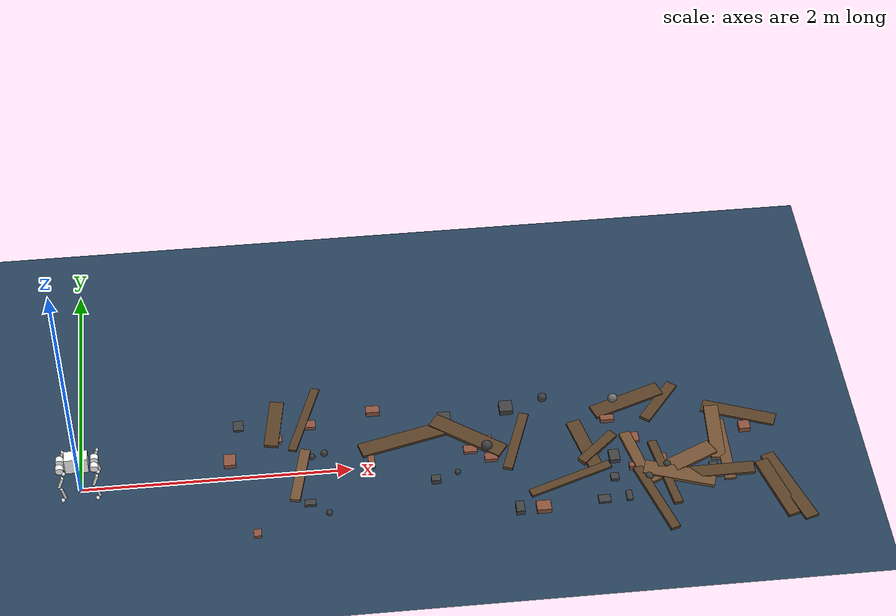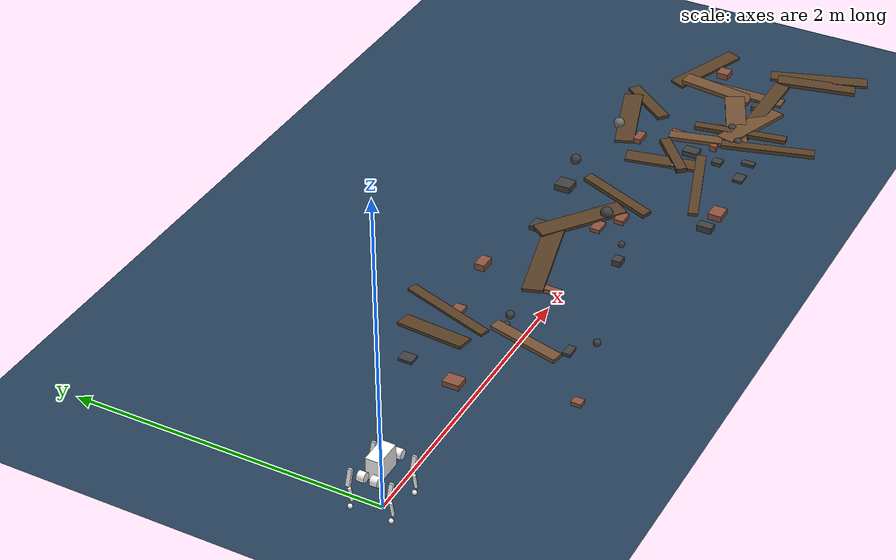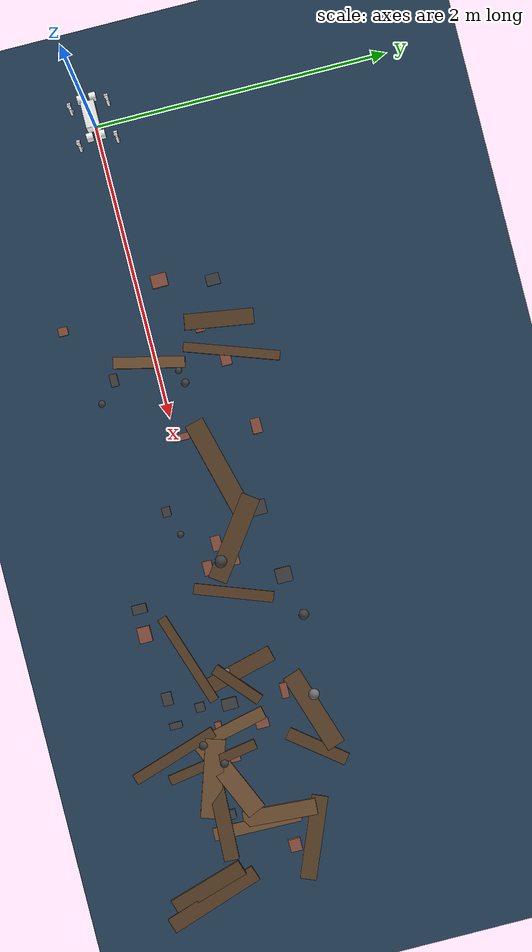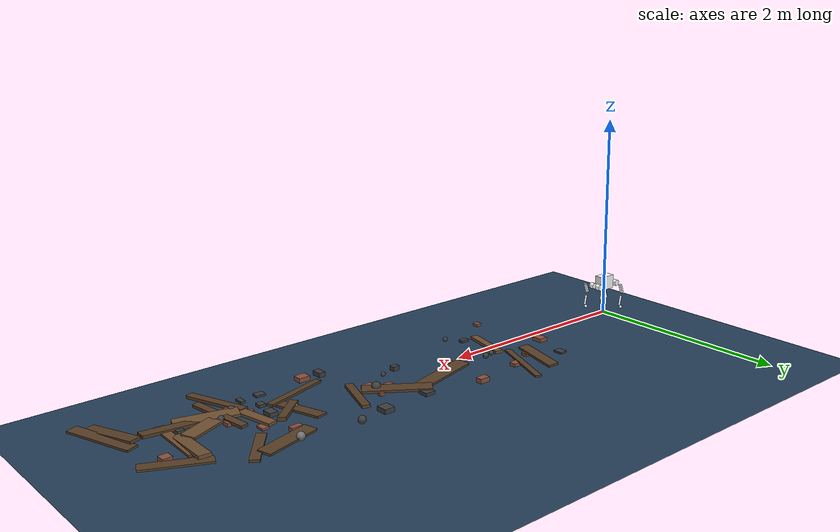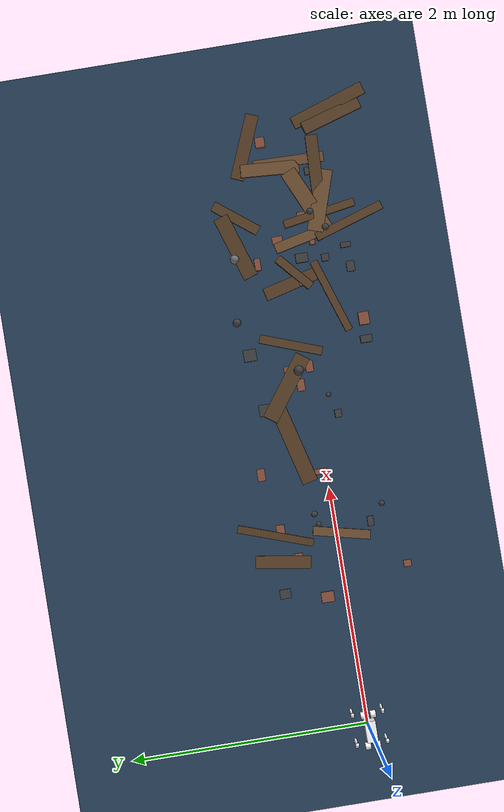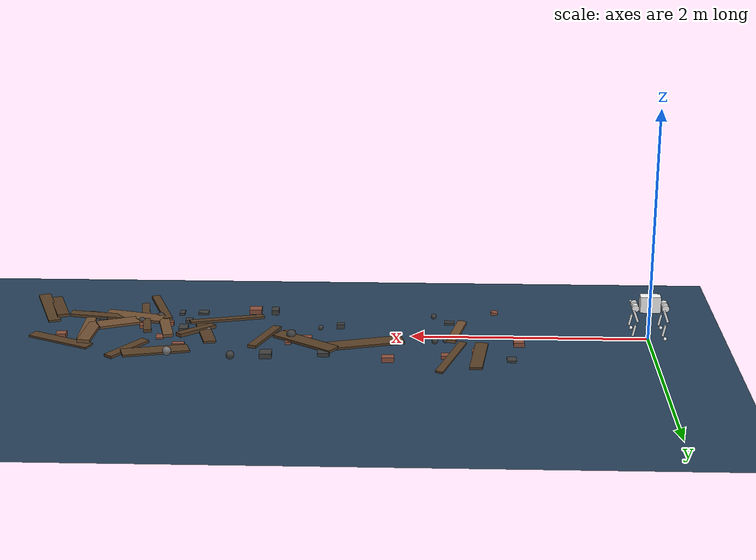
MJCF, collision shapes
<mujoco model="htdw_4438 scene debris planks">
  <include file="htdw_4438.xml"/>

  <statistic center="0 0 0.1" extent="0.8"/>

  <visual>
    <headlight diffuse="0.6 0.6 0.6" ambient="0.3 0.3 0.3" specular="0 0 0"/>
    <rgba haze="0.15 0.25 0.35 1"/>
  </visual>

  <asset>
    <texture type="skybox" builtin="gradient" rgb1="0.3 0.5 0.7" rgb2="0 0 0" width="512" height="3072"/>
    <texture type="2d" name="groundplane" builtin="checker" mark="edge" rgb1="0.2 0.3 0.4" rgb2="0.1 0.2 0.3"
      markrgb="0.8 0.8 0.8" width="300" height="300"/>
    <material name="groundplane" texture="groundplane" texuniform="true" texrepeat="5 5" reflectance="0.2"/>

    <material name="debris_stone" rgba="0.45 0.45 0.45 1" reflectance="0.05"/>
    <material name="debris_stone2" rgba="0.25 0.25 0.25 1" reflectance="0.05"/>
    <material name="debris_brick" rgba="0.55 0.32 0.24 1" reflectance="0.05"/>
    <material name="debris_wood" rgba="0.45 0.32 0.20 1" reflectance="0.05"/>
    <material name="debris_wood2" rgba="0.35 0.25 0.15 1" reflectance="0.05"/>
  </asset>

  <worldbody>
    <light pos="0 0 1.5" dir="0 0 -1" directional="true"/>
    <geom name="floor" size="0 0 0.05" type="plane" material="groundplane"/>

    <!-- Thin planks (slightly tilted) + scattered small bricks/rocks. -->
    <geom pos="3.747 0.037 0.027" euler="0.039 -0.014 4.961" type="box" size="0.239 0.053 0.009" material="debris_wood2"/>
    <geom pos="2.888 0.217 0.029" euler="-0.009 0.016 5.656" type="box" size="0.302 0.065 0.011" material="debris_wood2"/>
    <geom pos="4.776 -0.106 0.026" euler="-0.018 -0.046 1.548" type="box" size="0.298 0.042 0.008" material="debris_wood"/>
    <geom pos="4.424 -0.205 0.029" euler="-0.028 -0.036 0.423" type="box" size="0.290 0.067 0.011" material="debris_wood"/>
    <geom pos="1.675 0.509 0.026" euler="-0.036 -0.047 1.235" type="box" size="0.324 0.032 0.008" material="debris_wood2"/>
    <geom pos="1.447 0.481 0.028" euler="-0.055 0.057 4.565" type="box" size="0.233 0.053 0.010" material="debris_wood2"/>
    <geom pos="4.624 -0.315 0.030" euler="0.033 -0.054 3.108" type="box" size="0.336 0.051 0.012" material="debris_wood2"/>
    <geom pos="5.099 -0.523 0.031" euler="0.052 0.028 5.016" type="box" size="0.264 0.052 0.013" material="debris_wood2"/>
    <geom pos="2.395 0.230 0.028" euler="-0.051 -0.007 3.396" type="box" size="0.332 0.066 0.010" material="debris_wood2"/>
    <geom pos="4.735 0.060 0.032" euler="0.052 -0.008 4.656" type="box" size="0.248 0.054 0.014" material="debris_wood"/>
    <geom pos="1.613 -0.043 0.031" euler="0.017 -0.028 1.343" type="box" size="0.241 0.038 0.013" material="debris_wood"/>
    <geom pos="3.239 0.124 0.031" euler="0.041 -0.013 1.222" type="box" size="0.268 0.036 0.013" material="debris_wood2"/>
    <geom pos="4.951 0.240 0.026" euler="0.005 -0.037 2.749" type="box" size="0.280 0.055 0.008" material="debris_wood2"/>
    <geom pos="4.367 0.411 0.029" euler="-0.015 0.016 0.905" type="box" size="0.216 0.042 0.011" material="debris_wood2"/>
    <geom pos="4.298 -0.290 0.031" euler="-0.019 0.041 1.729" type="box" size="0.310 0.033 0.013" material="debris_wood2"/>
    <geom pos="5.187 -0.509 0.027" euler="-0.007 0.020 1.893" type="box" size="0.331 0.053 0.009" material="debris_wood2"/>
    <geom pos="4.405 -0.316 0.030" euler="-0.048 0.043 5.971" type="box" size="0.266 0.067 0.012" material="debris_wood"/>
    <geom pos="3.836 -0.004 0.033" euler="0.050 0.018 3.866" type="box" size="0.183 0.036 0.015" material="debris_wood2"/>
    <geom pos="4.194 -0.527 0.031" euler="0.018 0.025 5.022" type="box" size="0.307 0.036 0.013" material="debris_wood2"/>
    <geom pos="4.108 -0.103 0.031" euler="-0.018 0.016 4.932" type="box" size="0.229 0.043 0.013" material="debris_wood"/>
    <geom pos="4.127 0.448 0.027" euler="-0.036 -0.051 3.456" type="box" size="0.281 0.064 0.009" material="debris_wood2"/>
    <geom pos="3.594 -0.280 0.028" euler="0.035 -0.021 3.466" type="box" size="0.326 0.032 0.010" material="debris_wood2"/>

    <geom pos="4.004 -0.469 0.010" type="box" size="0.022 0.043 0.010" material="debris_stone2"/>
    <geom pos="3.363 -0.520 0.021" type="box" size="0.053 0.044 0.021" material="debris_brick"/>
    <geom pos="3.206 0.477 0.021" type="box" size="0.050 0.054 0.021" material="debris_stone2"/>
    <geom pos="1.708 0.460 0.015" type="box" size="0.050 0.035 0.015" material="debris_brick"/>
    <geom pos="4.093 -0.195 0.019" type="box" size="0.046 0.022 0.019" material="debris_brick"/>
    <geom pos="4.299 -0.139 0.015" type="box" size="0.035 0.035 0.015" material="debris_brick"/>
    <geom pos="3.037 0.192 0.011" type="box" size="0.026 0.023 0.011" material="debris_brick"/>
    <geom pos="2.730 0.423 0.015" type="box" size="0.049 0.053 0.015" material="debris_stone2"/>
    <geom pos="1.179 0.506 0.009" type="box" size="0.038 0.046 0.009" material="debris_stone2"/>
    <geom pos="2.198 0.546 0.022" type="box" size="0.051 0.033 0.022" material="debris_brick"/>
    <geom pos="4.131 0.093 0.009" type="box" size="0.032 0.044 0.009" material="debris_brick"/>
    <geom pos="3.818 -0.482 0.009" type="box" size="0.044 0.034 0.009" material="debris_stone2"/>
    <geom pos="1.100 0.158 0.018" type="box" size="0.044 0.054 0.018" material="debris_brick"/>
    <geom pos="4.969 0.107 0.021" type="box" size="0.042 0.040 0.021" material="debris_brick"/>
    <geom pos="2.892 0.094 0.013" type="box" size="0.050 0.033 0.013" material="debris_brick"/>
    <geom pos="1.670 -0.299 0.011" type="box" size="0.042 0.026 0.011" material="debris_stone2"/>
    <geom pos="2.607 -0.177 0.020" type="box" size="0.033 0.028 0.020" material="debris_stone2"/>
    <geom pos="2.148 0.045 0.015" type="box" size="0.023 0.053 0.015" material="debris_brick"/>
    <geom pos="3.953 0.290 0.018" type="box" size="0.051 0.025 0.018" material="debris_brick"/>
    <geom pos="1.271 -0.548 0.012" type="box" size="0.028 0.032 0.012" material="debris_brick"/>
    <geom pos="3.950 -0.086 0.018" type="box" size="0.038 0.052 0.018" material="debris_stone2"/>
    <geom pos="1.453 0.343 0.011" type="box" size="0.045 0.033 0.011" material="debris_brick"/>
    <geom pos="3.924 -0.283 0.013" type="box" size="0.030 0.031 0.013" material="debris_stone2"/>
    <geom pos="4.669 -0.270 0.017" type="box" size="0.031 0.044 0.017" material="debris_stone2"/>
    <geom pos="3.190 -0.512 0.021" type="box" size="0.031 0.049 0.021" material="debris_stone2"/>
    <geom pos="3.038 -0.001 0.016" type="box" size="0.048 0.032 0.016" material="debris_brick"/>

    <geom pos="3.016 0.093 0.042" type="sphere" size="0.042" material="debris_stone2"/>
    <geom pos="4.174 -0.322 0.033" type="sphere" size="0.033" material="debris_stone2"/>
    <geom pos="3.494 0.541 0.035" type="sphere" size="0.035" material="debris_stone2"/>
    <geom pos="2.776 -0.123 0.022" type="sphere" size="0.022" material="debris_stone2"/>
    <geom pos="1.804 0.158 0.027" type="sphere" size="0.027" material="debris_stone2"/>
    <geom pos="1.713 0.135 0.023" type="sphere" size="0.023" material="debris_stone2"/>
    <geom pos="1.803 -0.416 0.024" type="sphere" size="0.024" material="debris_stone2"/>
    <geom pos="4.026 0.475 0.037" type="sphere" size="0.037" material="debris_stone"/>
    <geom pos="4.326 -0.217 0.030" type="sphere" size="0.030" material="debris_stone2"/>
    <geom pos="3.733 -0.046 0.021" type="sphere" size="0.021" material="debris_stone"/>
  </worldbody>
</mujoco>

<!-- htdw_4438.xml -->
<mujoco model="htdw_4438">
    <compiler angle="radian" meshdir="../meshes" />
    <size njmax="500" nconmax="100" />

    <asset>
        <mesh name="base_link_simple" file="base_link_simple.STL" />
        <mesh name="FL_hip" file="FL_hip.STL" />
        <mesh name="FL_thigh" file="FL_thigh.STL" />
        <mesh name="FL_calf" file="FL_calf.STL" />
        <mesh name="FL_foot" file="FL_foot.STL" />
        <mesh name="FR_hip" file="FR_hip.STL" />
        <mesh name="FR_thigh" file="FR_thigh.STL" />
        <mesh name="FR_calf" file="FR_calf.STL" />
        <mesh name="FR_foot" file="FR_foot.STL" />
        <mesh name="RL_hip" file="RL_hip.STL" />
        <mesh name="RL_thigh" file="RL_thigh.STL" />
        <mesh name="RL_calf" file="RL_calf.STL" />
        <mesh name="RL_foot" file="RL_foot.STL" />
        <mesh name="RR_hip" file="RR_hip.STL" />
        <mesh name="RR_thigh" file="RR_thigh.STL" />
        <mesh name="RR_calf" file="RR_calf.STL" />
        <mesh name="RR_foot" file="RR_foot.STL" />
    </asset>

    <!-- 统一设置阻尼、摩擦力、碰撞解算参数 -->
    <default>
        <!-- IsaacGym/LeggedGym cfg.asset.armature = 0.005; 这里对齐以提升数值稳定性 -->
	        <!-- URDF 未显式设置关节被动阻尼；此处设为 0 以对齐 IsaacGym（被动阻尼主要由 PD 的 Kd 提供） -->
	        <joint limited="true" damping="0.0" frictionloss="0.0" armature="0.005"/>
        <!-- 原 solref=0.005 过硬，容易在接触+高频PD下抖动；改为更温和的接触时间常数 -->
        <geom contype="1" conaffinity="1" friction="0.8 0.05 0.05" solref="0.02 1"/>
    </default>

    <worldbody>
        <!-- Robot Base (Root Body) from Snippet -->
        <body name="robot" pos="0 0 0.3" quat="1 0 0 0">
            <joint name="float_base" type="free" limited="false"/>
	        <!-- 与 resources/robots/htdw_4438/urdf/htdw_4438.urdf 的 base_link 惯性对齐（避免 sim2sim gap） -->
	        <inertial pos="-0.00139370 0.00012462 0.01353999" quat="0.05699976 0.72222690 0.06363175 0.68636020" mass="2.68214792" diaginertia="0.01217432 0.01195068 0.00675497"/>
            <site name="imu" pos="-0.02557 0 0.04232" />

            <!-- Adding Visual Geoms from Original File to the Root Body -->
            <geom type="mesh" contype="0" conaffinity="0" group="1" rgba="1 1 1 1" mesh="base_link_simple" />
            <geom size="0.085 0.045 0.069" pos="0 0 0.025" type="box" rgba="1 1 1 1" />

            <!-- Front Left Leg -->
            <!-- Joint names changed to Uppercase to match actuators -->
            <body name="fl_hip" pos="0.0909 0.04 0">
                <inertial pos="0.0326958 0.00444394 -9.507e-05" quat="0.465966 0.463585 0.53558 0.530206" mass="0.292358" diaginertia="0.000412728 0.000405494 8.3118e-05" />
                <joint name="FL_hip_joint" pos="0 0 0" axis="1 0 0" limited="true" range="-0.9 0.9" />
                <geom type="mesh" contype="0" conaffinity="0" group="1" rgba="1 1 1 1" mesh="FL_hip" />
                <geom size="0.03 0.0225" pos="0.035 0 0" quat="0.505398 0.499971 0.499971 -0.494602" type="cylinder" rgba="1 1 1 1" />

                <body name="fl_thigh" pos="0.034 0.0254 0">
                    <inertial pos="-0.00137569 0.0379093 -0.0116534" quat="0.884178 0.465761 0.0354147 -0.00650016" mass="0.410408" diaginertia="0.00122804 0.000985868 0.000366426" />
                    <joint name="FL_thigh_joint" pos="0 0 0" axis="0 1 0" limited="true" range="-1.5 3.5" />
                    <geom type="mesh" contype="0" conaffinity="0" group="1" rgba="1 1 1 1" mesh="FL_thigh" />
                    <geom size="0.01 0.0125 0.05" pos="0.004 0.06 -0.045" quat="0.984727 0 0.174108 0" type="box" rgba="1 1 1 1" />

                    <body name="fl_calf" pos="0 0.0604 -0.12">
                        <inertial pos="0.0101367 -0.000182728 -0.0624887" quat="0.710874 -0.0477597 -0.04827 0.700034" mass="0.0469098" diaginertia="0.000213166 0.000209385 5.3017e-06" />
                        <joint name="FL_calf_joint" pos="0 0 0" axis="0 1 0" limited="true" range="-2.5 -1.2" />
                        <geom type="mesh" contype="0" conaffinity="0" group="1" rgba="1 1 1 1" mesh="FL_calf" />
                        <geom size="0.01 0.05" pos="0.013 0 -0.05" quat="0.995004 0 -0.0998334 0" type="cylinder" rgba="1 1 1 1" />

                        <!-- Foot Geoms -->
                        <geom pos="0.00206 6e-05 -0.13694" type="mesh" contype="0" conaffinity="0" group="1" rgba="1 1 1 1" mesh="FL_foot" />
                        <geom size="0.015" pos="0.00456 6e-05 -0.12424" rgba="1 1 1 1" />
                        <!-- Adding a site for possible contact sensing, though not strictly in the sensor snippet -->
                        <site name="FL_foot_site" pos="0.00456 6e-05 -0.12424" size="0.01" rgba="0 0 1 0.5"/>
                    </body>
                </body>
            </body>

            <!-- Front Right Leg -->
            <body name="fr_hip" pos="0.0909 -0.04 0">
                <inertial pos="0.0326958 -0.00444394 9.507e-05" quat="0.53558 0.530206 0.465966 0.463585" mass="0.292358" diaginertia="0.000412728 0.000405494 8.3118e-05" />
                <joint name="FR_hip_joint" pos="0 0 0" axis="1 0 0" limited="true" range="-0.9 0.9" />
                <geom type="mesh" contype="0" conaffinity="0" group="1" rgba="1 1 1 1" mesh="FR_hip" />
                <geom size="0.03 0.0225" pos="0.035 0 0" quat="0.505398 0.499971 0.499971 -0.494602" type="cylinder" rgba="1 1 1 1" />

                <body name="fr_thigh" pos="0.034 -0.0254 0">
                    <inertial pos="-0.00130371 -0.0379128 -0.0115569" quat="0.466339 0.884003 0.00461373 -0.0323373" mass="0.410408" diaginertia="0.0012278 0.000984249 0.000367077" />
                    <joint name="FR_thigh_joint" pos="0 0 0" axis="0 1 0" limited="true" range="-1.5 3.5" />
                    <geom type="mesh" contype="0" conaffinity="0" group="1" rgba="1 1 1 1" mesh="FR_thigh" />
                    <geom size="0.01 0.0125 0.05" pos="0.004 -0.06 -0.045" quat="0.984727 0 0.174108 0" type="box" rgba="1 1 1 1" />

                    <body name="fr_calf" pos="0 -0.0604 -0.12">
                        <inertial pos="0.0101597 1.52233e-05 -0.0626033" quat="0.698922 -0.0488767 -0.0472409 0.711961" mass="0.0469098" diaginertia="0.000213525 0.000209727 5.30063e-06" />
                        <joint name="FR_calf_joint" pos="0 0 0" axis="0 1 0" limited="true" range="-2.5 -1.2" />
                        <geom type="mesh" contype="0" conaffinity="0" group="1" rgba="1 1 1 1" mesh="FR_calf" />
                        <geom size="0.01 0.05" pos="0.013 0 -0.05" quat="0.995004 0 -0.0998334 0" type="cylinder" rgba="1 1 1 1" />

                        <geom pos="0.00206 6e-05 -0.13694" type="mesh" contype="0" conaffinity="0" group="1" rgba="1 1 1 1" mesh="FR_foot" />
                        <geom size="0.015" pos="0.00456 6e-05 -0.12424" rgba="1 1 1 1" />
                        <site name="FR_foot_site" pos="0.00456 6e-05 -0.12424" size="0.01" rgba="0 0 1 0.5"/>
                    </body>
                </body>
            </body>

            <!-- Rear Left Leg -->
            <body name="rl_hip" pos="-0.0909 0.04 0">
                <inertial pos="-0.0326958 0.00444394 9.507e-05" quat="0.530206 0.53558 0.463585 0.465966" mass="0.292358" diaginertia="0.000412728 0.000405494 8.3118e-05" />
                <joint name="RL_hip_joint" pos="0 0 0" axis="1 0 0" limited="true" range="-0.9 0.9" />
                <geom type="mesh" contype="0" conaffinity="0" group="1" rgba="1 1 1 1" mesh="RL_hip" />
                <geom size="0.03 0.0225" pos="-0.035 0 0" quat="0.505398 0.499971 0.499971 -0.494602" type="cylinder" rgba="1 1 1 1" />

                <body name="rl_thigh" pos="-0.034 0.0254 0">
                    <inertial pos="-0.00137569 0.0379093 -0.0116534" quat="0.884178 0.465761 0.0354147 -0.00650016" mass="0.410408" diaginertia="0.00122804 0.000985868 0.000366426" />
                    <joint name="RL_thigh_joint" pos="0 0 0" axis="0 1 0" limited="true" range="-1.5 3.5" />
                    <geom type="mesh" contype="0" conaffinity="0" group="1" rgba="1 1 1 1" mesh="RL_thigh" />
                    <geom size="0.01 0.0125 0.05" pos="0.004 0.06 -0.045" quat="0.984727 0 0.174108 0" type="box" rgba="1 1 1 1" />

                    <body name="rl_calf" pos="0 0.0604 -0.12">
                        <inertial pos="0.0095589 -0.000182728 -0.0624887" quat="0.709338 -0.0452838 -0.0455386 0.701937" mass="0.0469098" diaginertia="0.000213491 0.000208973 6.03985e-06" />
                        <joint name="RL_calf_joint" pos="0 0 0" axis="0 1 0" limited="true" range="-2.5 -1.2" />
                        <geom type="mesh" contype="0" conaffinity="0" group="1" rgba="1 1 1 1" mesh="RL_calf" />
                        <geom size="0.01 0.05" pos="0.013 0 -0.05" quat="0.995004 0 -0.0998334 0" type="cylinder" rgba="1 1 1 1" />

                        <geom pos="-0.00206 6e-05 -0.13694" type="mesh" contype="0" conaffinity="0" group="1" rgba="1 1 1 1" mesh="RL_foot" />
                        <geom size="0.015" pos="0.00044 6e-05 -0.12424" rgba="1 1 1 1" />
                        <site name="RL_foot_site" pos="0.00044 6e-05 -0.12424" size="0.01" rgba="0 0 1 0.5"/>
                    </body>
                </body>
            </body>

            <!-- Rear Right Leg -->
            <body name="rr_hip" pos="-0.0909 -0.04 0">
                <inertial pos="-0.0326958 -0.00444394 -9.507e-05" quat="0.463585 0.465966 0.530206 0.53558" mass="0.292358" diaginertia="0.000412728 0.000405494 8.3118e-05" />
                <joint name="RR_hip_joint" pos="0 0 0" axis="1 0 0" limited="true" range="-0.9 0.9" />
                <geom type="mesh" contype="0" conaffinity="0" group="1" rgba="1 1 1 1" mesh="RR_hip" />
                <geom size="0.03 0.0225" pos="-0.035 0 0" quat="0.505398 0.499971 0.499971 -0.494602" type="cylinder" rgba="1 1 1 1" />

                <body name="rr_thigh" pos="-0.034 -0.0254 0">
                    <inertial pos="-0.00130371 -0.0379128 -0.0115569" quat="0.466339 0.884003 0.00461373 -0.0323373" mass="0.410408" diaginertia="0.0012278 0.000984249 0.000367077" />
                    <joint name="RR_thigh_joint" pos="0 0 0" axis="0 1 0" limited="true" range="-1.5 3.5" />
                    <geom type="mesh" contype="0" conaffinity="0" group="1" rgba="1 1 1 1" mesh="RR_thigh" />
                    <geom size="0.01 0.0125 0.05" pos="0.004 -0.06 -0.045" quat="0.984727 0 0.174108 0" type="box" rgba="1 1 1 1" />

                    <body name="rr_calf" pos="0 -0.0604 -0.12">
                        <inertial pos="0.00958187 1.52233e-05 -0.0626033" quat="0.698998 -0.0462627 -0.044667 0.712227" mass="0.0469098" diaginertia="0.000213852 0.000209314 6.03965e-06" />
                        <joint name="RR_calf_joint" pos="0 0 0" axis="0 1 0" limited="true" range="-2.5 -1.2" />
                        <geom type="mesh" contype="0" conaffinity="0" group="1" rgba="1 1 1 1" mesh="RR_calf" />
                        <geom size="0.01 0.05" pos="0.013 0 -0.05" quat="0.995004 0 -0.0998334 0" type="cylinder" rgba="1 1 1 1" />

                        <geom pos="-0.00206 6e-05 -0.13694" type="mesh" contype="0" conaffinity="0" group="1" rgba="1 1 1 1" mesh="RR_foot" />
                        <geom size="0.015" pos="0.00044 6e-05 -0.12424" rgba="1 1 1 1" />
                        <site name="RR_foot_site" pos="0.00044 6e-05 -0.12424" size="0.01" rgba="0 0 1 0.5"/>
                    </body>
                </body>
            </body>
        </body>
    </worldbody>

    <!-- Actuator Section from Snippet -->
    <actuator>
        <motor name="FL_hip_joint" joint="FL_hip_joint" gear="1" ctrllimited="true" ctrlrange="-10 10"/>
        <motor name="FL_thigh_joint" joint="FL_thigh_joint" gear="1" ctrllimited="true" ctrlrange="-10 10"/>
        <motor name="FL_calf_joint" joint="FL_calf_joint" gear="1" ctrllimited="true" ctrlrange="-10 10"/>

        <motor name="FR_hip_joint" joint="FR_hip_joint" gear="1" ctrllimited="true" ctrlrange="-10 10"/>
        <motor name="FR_thigh_joint" joint="FR_thigh_joint" gear="1" ctrllimited="true" ctrlrange="-10 10"/>
        <motor name="FR_calf_joint" joint="FR_calf_joint" gear="1" ctrllimited="true" ctrlrange="-10 10"/>

        <motor name="RL_hip_joint" joint="RL_hip_joint" gear="1" ctrllimited="true" ctrlrange="-10 10"/>
        <motor name="RL_thigh_joint" joint="RL_thigh_joint" gear="1" ctrllimited="true" ctrlrange="-10 10"/>
        <motor name="RL_calf_joint" joint="RL_calf_joint" gear="1" ctrllimited="true" ctrlrange="-10 10"/>

        <motor name="RR_hip_joint" joint="RR_hip_joint" gear="1" ctrllimited="true" ctrlrange="-10 10"/>
        <motor name="RR_thigh_joint" joint="RR_thigh_joint" gear="1" ctrllimited="true" ctrlrange="-10 10"/>
        <motor name="RR_calf_joint" joint="RR_calf_joint" gear="1" ctrllimited="true" ctrlrange="-10 10"/>
    </actuator>

    <!-- Sensor Section from Snippet -->
    <sensor>
        <actuatorpos name='FR_hip_joint_p'  actuator='FR_hip_joint' user='13'/>
        <actuatorpos name='FR_thigh_joint_p'  actuator='FR_thigh_joint' user='13'/>
        <actuatorpos name='FR_calf_joint_p'  actuator='FR_calf_joint' user='13'/>
        <actuatorpos name='FL_hip_joint_p'  actuator='FL_hip_joint' user='13'/>
        <actuatorpos name='FL_thigh_joint_p'  actuator='FL_thigh_joint' user='13'/>
        <actuatorpos name='FL_calf_joint_p'  actuator='FL_calf_joint' user='13'/>
        <actuatorpos name='RR_hip_joint_p'  actuator='RR_hip_joint' user='13'/>
        <actuatorpos name='RR_thigh_joint_p'  actuator='RR_thigh_joint' user='13'/>
        <actuatorpos name='RR_calf_joint_p'  actuator='RR_calf_joint' user='13'/>
        <actuatorpos name='RL_hip_joint_p'  actuator='RL_hip_joint' user='13'/>
        <actuatorpos name='RL_thigh_joint_p'  actuator='RL_thigh_joint' user='13'/>
        <actuatorpos name='RL_calf_joint_p'  actuator='RL_calf_joint' user='13'/>

        <actuatorvel name='FR_hip_joint_v'  actuator='FR_hip_joint' user='13'/>
        <actuatorvel name='FR_thigh_joint_v'  actuator='FR_thigh_joint' user='13'/>
        <actuatorvel name='FR_calf_joint_v'  actuator='FR_calf_joint' user='13'/>
        <actuatorvel name='FL_hip_joint_v'  actuator='FL_hip_joint' user='13'/>
        <actuatorvel name='FL_thigh_joint_v'  actuator='FL_thigh_joint' user='13'/>
        <actuatorvel name='FL_calf_joint_v'  actuator='FL_calf_joint' user='13'/>
        <actuatorvel name='RR_hip_joint_v'  actuator='RR_hip_joint' user='13'/>
        <actuatorvel name='RR_thigh_joint_v'  actuator='RR_thigh_joint' user='13'/>
        <actuatorvel name='RR_calf_joint_v'  actuator='RR_calf_joint' user='13'/>
        <actuatorvel name='RL_hip_joint_v'  actuator='RL_hip_joint' user='13'/>
        <actuatorvel name='RL_thigh_joint_v'  actuator='RL_thigh_joint' user='13'/>
        <actuatorvel name='RL_calf_joint_v'  actuator='RL_calf_joint' user='13'/>

        <actuatorfrc name='FR_hip_joint_f'  actuator='FR_hip_joint'  user='13' noise='1e-3'/>
        <actuatorfrc name='FR_thigh_joint_f'  actuator='FR_thigh_joint'  user='13' noise='1e-3'/>
        <actuatorfrc name='FR_calf_joint_f'  actuator='FR_calf_joint'  user='13' noise='1e-3'/>
        <actuatorfrc name='FL_hip_joint_f'  actuator='FL_hip_joint'  user='13' noise='1e-3'/>
        <actuatorfrc name='FL_thigh_joint_f'  actuator='FL_thigh_joint'  user='13' noise='1e-3'/>
        <actuatorfrc name='FL_calf_joint_f'  actuator='FL_calf_joint'  user='13' noise='1e-3'/>
        <actuatorfrc name='RR_hip_joint_f'  actuator='RR_hip_joint'  user='13' noise='1e-3'/>
        <actuatorfrc name='RR_thigh_joint_f'  actuator='RR_thigh_joint'  user='13' noise='1e-3'/>
        <actuatorfrc name='RR_calf_joint_f'  actuator='RR_calf_joint'  user='13' noise='1e-3'/>
        <actuatorfrc name='RL_hip_joint_f'  actuator='RL_hip_joint'  user='13' noise='1e-3'/>
        <actuatorfrc name='RL_thigh_joint_f'  actuator='RL_thigh_joint'  user='13' noise='1e-3'/>
        <actuatorfrc name='RL_calf_joint_f'  actuator='RL_calf_joint'  user='13' noise='1e-3'/>

        <framequat     name='orientation' objtype='site' noise='0.001' objname='imu'/>
        <framepos      name='position' objtype='site' noise='0.001' objname='imu'/>
        <gyro          name='angular-velocity'    site='imu' noise='0.005' cutoff='34.9'/>
        <velocimeter   name='linear-velocity'     site='imu' noise='0.001' cutoff='30'/>
        <accelerometer name='linear-acceleration' site='imu' noise='0.005' cutoff='157'/>
        <magnetometer  name='magnetometer'        site='imu'/>
    </sensor>
</mujoco>
